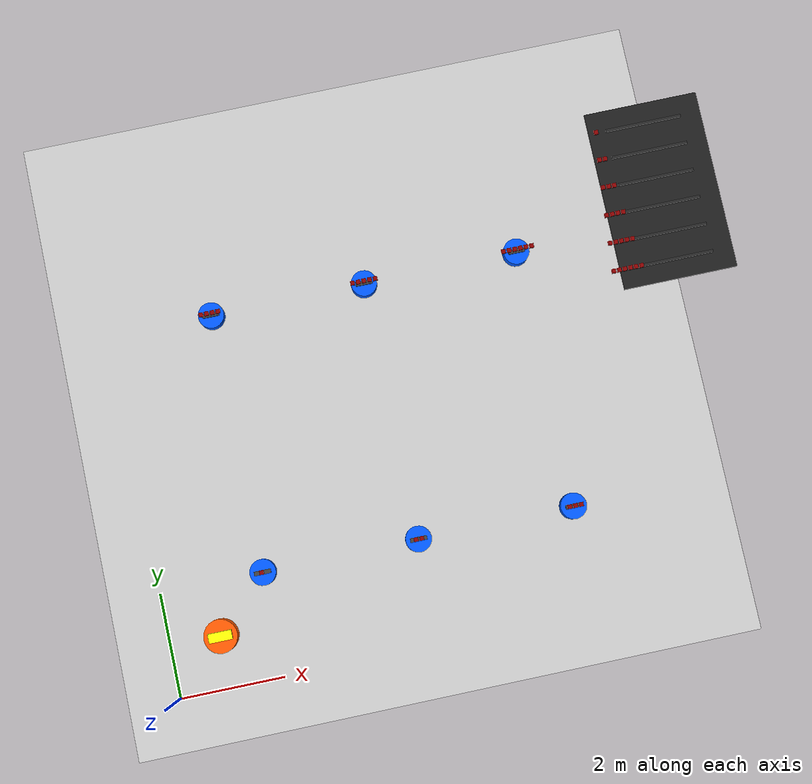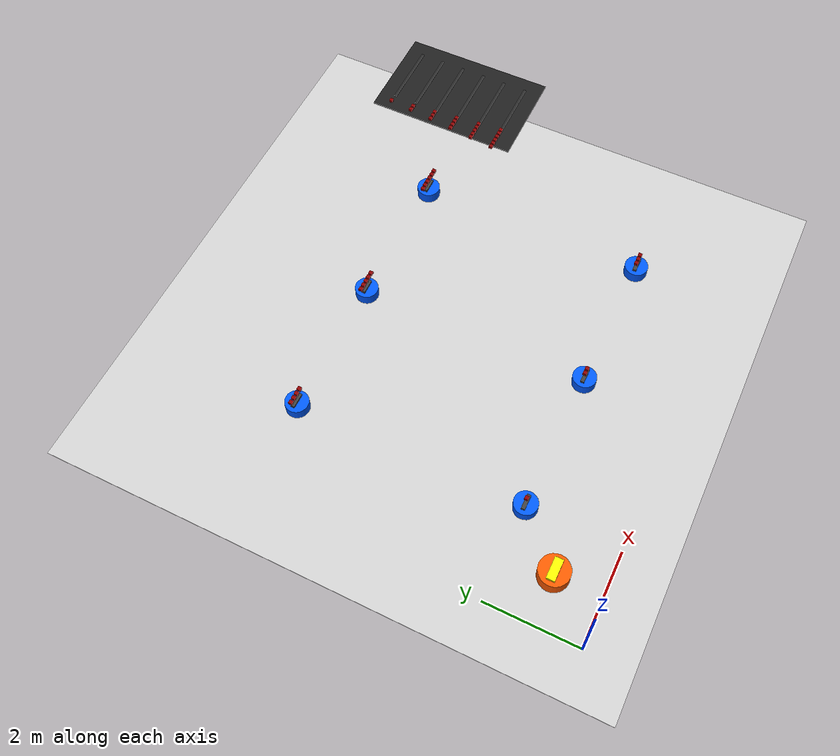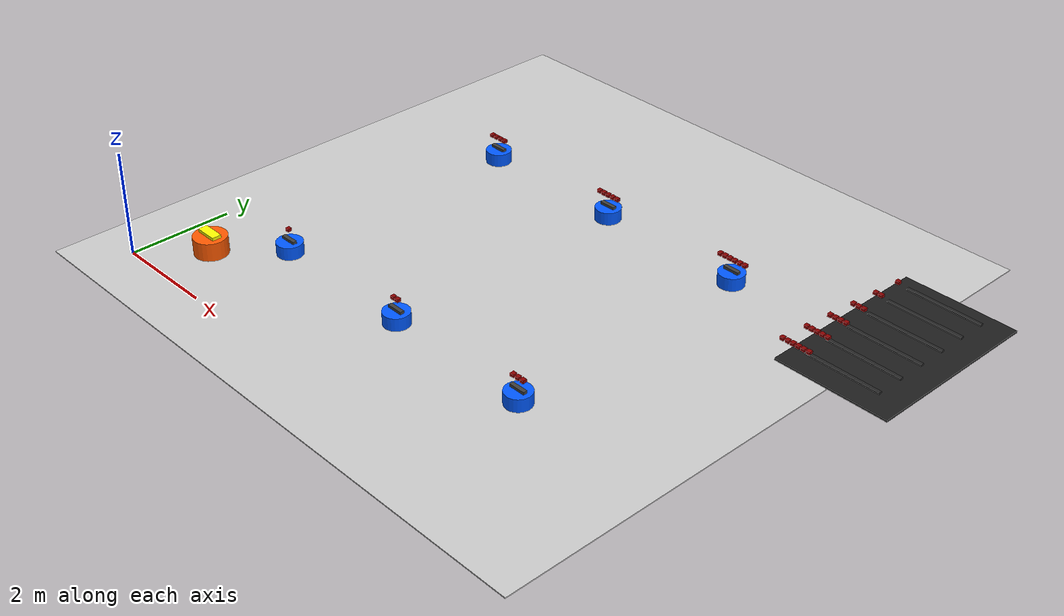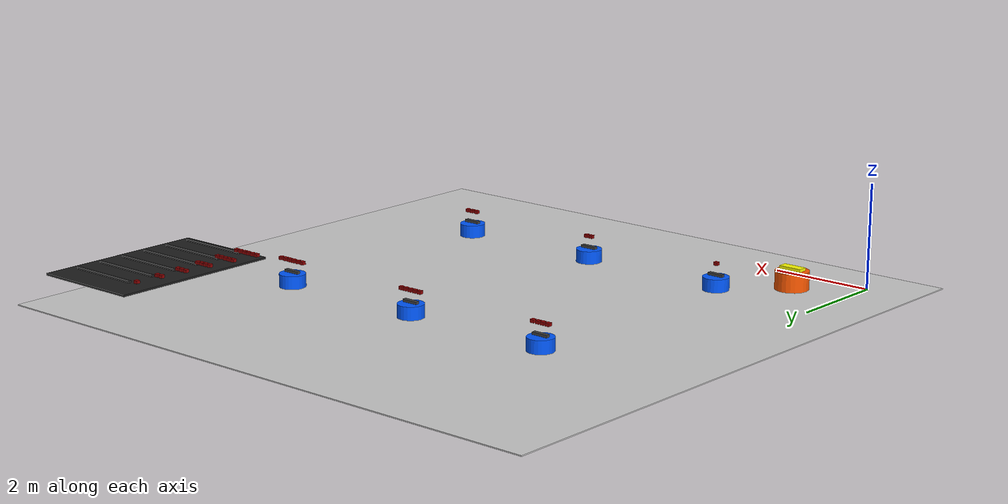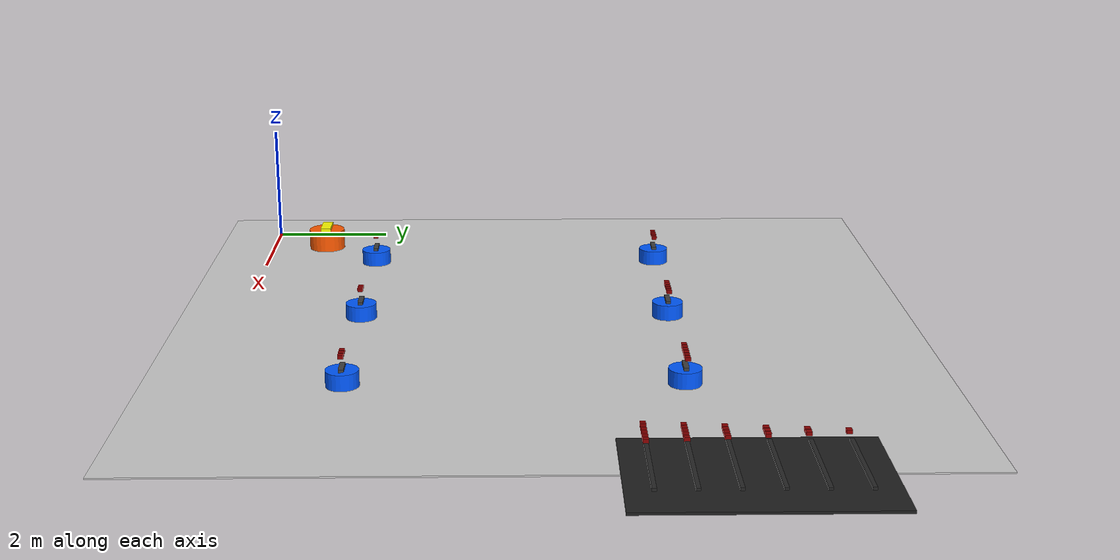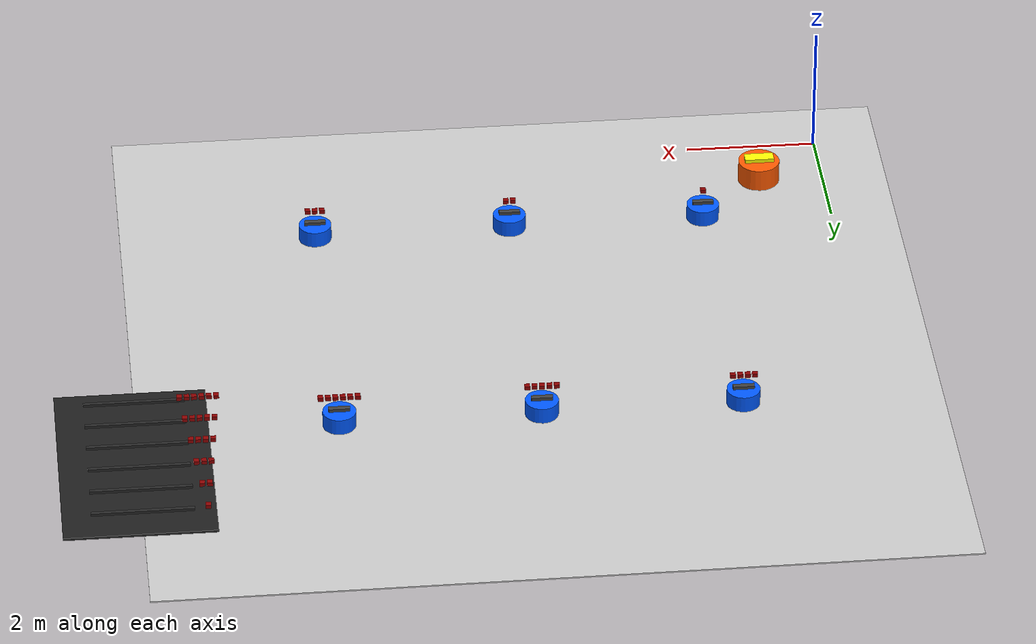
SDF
<sdf version="1.6">
 <world name="charging_world">
  <model name="ground_plane">
   <static>true</static>
   <link name="ground_link">
    <collision name="ground_collision"><geometry><box><size>12 12 0.02</size></box></geometry></collision>
    <visual name="ground_visual">
     <pose>5 5 -0.01 0 0 0</pose>
     <geometry><box><size>12 12 0.02</size></box></geometry>
     <material><ambient>0.8 0.8 0.8 1</ambient><diffuse>0.8 0.8 0.8 1</diffuse></material>
    </visual>
   </link>
  </model>
  <model name="battery_panel_back">
   <pose>11.05 7.65 0.02 0 0 0</pose>
   <static>true</static>
   <link name="link">
    <visual name="panel">
     <geometry><box><size>2.25 3.55 0.04</size></box></geometry>
     <material><ambient>0.12 0.12 0.12 1</ambient><diffuse>0.12 0.12 0.12 1</diffuse></material>
    </visual>
   </link>
  </model>
  <model name="panel_label_r1">
   <pose>10.05 9.00 0.18 0 0 0</pose>
   <static>true</static>
   <link name="link">
    <visual name="dot1">
     <geometry><box><size>0.08 0.08 0.06</size></box></geometry>
     <material><ambient>0.55 0 0 1</ambient><diffuse>0.55 0 0 1</diffuse></material>
    </visual>
   </link>
  </model>
  <model name="panel_label_r2">
   <pose>10.05 8.45 0.18 0 0 0</pose>
   <static>true</static>
   <link name="link">
    <visual name="dot1">
     <pose>-0.055 0.000 0.000 0 0 0</pose>
     <geometry><box><size>0.08 0.08 0.06</size></box></geometry>
     <material><ambient>0.55 0 0 1</ambient><diffuse>0.55 0 0 1</diffuse></material>
    </visual>
    <visual name="dot2">
     <pose>0.055 0.000 0.000 0 0 0</pose>
     <geometry><box><size>0.08 0.08 0.06</size></box></geometry>
     <material><ambient>0.55 0 0 1</ambient><diffuse>0.55 0 0 1</diffuse></material>
    </visual>
   </link>
  </model>
  <model name="panel_label_r3">
   <pose>10.05 7.90 0.18 0 0 0</pose>
   <static>true</static>
   <link name="link">
    <visual name="dot1">
     <pose>-0.110 0.000 0.000 0 0 0</pose>
     <geometry><box><size>0.08 0.08 0.06</size></box></geometry>
     <material><ambient>0.55 0 0 1</ambient><diffuse>0.55 0 0 1</diffuse></material>
    </visual>
    <visual name="dot2">
     <geometry><box><size>0.08 0.08 0.06</size></box></geometry>
     <material><ambient>0.55 0 0 1</ambient><diffuse>0.55 0 0 1</diffuse></material>
    </visual>
    <visual name="dot3">
     <pose>0.110 0.000 0.000 0 0 0</pose>
     <geometry><box><size>0.08 0.08 0.06</size></box></geometry>
     <material><ambient>0.55 0 0 1</ambient><diffuse>0.55 0 0 1</diffuse></material>
    </visual>
   </link>
  </model>
  <model name="panel_label_r4">
   <pose>10.05 7.35 0.18 0 0 0</pose>
   <static>true</static>
   <link name="link">
    <visual name="dot1">
     <pose>-0.165 0.000 0.000 0 0 0</pose>
     <geometry><box><size>0.08 0.08 0.06</size></box></geometry>
     <material><ambient>0.55 0 0 1</ambient><diffuse>0.55 0 0 1</diffuse></material>
    </visual>
    <visual name="dot2">
     <pose>-0.055 0.000 0.000 0 0 0</pose>
     <geometry><box><size>0.08 0.08 0.06</size></box></geometry>
     <material><ambient>0.55 0 0 1</ambient><diffuse>0.55 0 0 1</diffuse></material>
    </visual>
    <visual name="dot3">
     <pose>0.055 0.000 0.000 0 0 0</pose>
     <geometry><box><size>0.08 0.08 0.06</size></box></geometry>
     <material><ambient>0.55 0 0 1</ambient><diffuse>0.55 0 0 1</diffuse></material>
    </visual>
    <visual name="dot4">
     <pose>0.165 0.000 0.000 0 0 0</pose>
     <geometry><box><size>0.08 0.08 0.06</size></box></geometry>
     <material><ambient>0.55 0 0 1</ambient><diffuse>0.55 0 0 1</diffuse></material>
    </visual>
   </link>
  </model>
  <model name="panel_label_r5">
   <pose>10.05 6.80 0.18 0 0 0</pose>
   <static>true</static>
   <link name="link">
    <visual name="dot1">
     <pose>-0.220 0.000 0.000 0 0 0</pose>
     <geometry><box><size>0.08 0.08 0.06</size></box></geometry>
     <material><ambient>0.55 0 0 1</ambient><diffuse>0.55 0 0 1</diffuse></material>
    </visual>
    <visual name="dot2">
     <pose>-0.110 0.000 0.000 0 0 0</pose>
     <geometry><box><size>0.08 0.08 0.06</size></box></geometry>
     <material><ambient>0.55 0 0 1</ambient><diffuse>0.55 0 0 1</diffuse></material>
    </visual>
    <visual name="dot3">
     <geometry><box><size>0.08 0.08 0.06</size></box></geometry>
     <material><ambient>0.55 0 0 1</ambient><diffuse>0.55 0 0 1</diffuse></material>
    </visual>
    <visual name="dot4">
     <pose>0.110 0.000 0.000 0 0 0</pose>
     <geometry><box><size>0.08 0.08 0.06</size></box></geometry>
     <material><ambient>0.55 0 0 1</ambient><diffuse>0.55 0 0 1</diffuse></material>
    </visual>
    <visual name="dot5">
     <pose>0.220 0.000 0.000 0 0 0</pose>
     <geometry><box><size>0.08 0.08 0.06</size></box></geometry>
     <material><ambient>0.55 0 0 1</ambient><diffuse>0.55 0 0 1</diffuse></material>
    </visual>
   </link>
  </model>
  <model name="panel_label_r6">
   <pose>10.05 6.25 0.18 0 0 0</pose>
   <static>true</static>
   <link name="link">
    <visual name="dot1">
     <pose>-0.275 0.000 0.000 0 0 0</pose>
     <geometry><box><size>0.08 0.08 0.06</size></box></geometry>
     <material><ambient>0.55 0 0 1</ambient><diffuse>0.55 0 0 1</diffuse></material>
    </visual>
    <visual name="dot2">
     <pose>-0.165 0.000 0.000 0 0 0</pose>
     <geometry><box><size>0.08 0.08 0.06</size></box></geometry>
     <material><ambient>0.55 0 0 1</ambient><diffuse>0.55 0 0 1</diffuse></material>
    </visual>
    <visual name="dot3">
     <pose>-0.055 0.000 0.000 0 0 0</pose>
     <geometry><box><size>0.08 0.08 0.06</size></box></geometry>
     <material><ambient>0.55 0 0 1</ambient><diffuse>0.55 0 0 1</diffuse></material>
    </visual>
    <visual name="dot4">
     <pose>0.055 0.000 0.000 0 0 0</pose>
     <geometry><box><size>0.08 0.08 0.06</size></box></geometry>
     <material><ambient>0.55 0 0 1</ambient><diffuse>0.55 0 0 1</diffuse></material>
    </visual>
    <visual name="dot5">
     <pose>0.165 0.000 0.000 0 0 0</pose>
     <geometry><box><size>0.08 0.08 0.06</size></box></geometry>
     <material><ambient>0.55 0 0 1</ambient><diffuse>0.55 0 0 1</diffuse></material>
    </visual>
    <visual name="dot6">
     <pose>0.275 0.000 0.000 0 0 0</pose>
     <geometry><box><size>0.08 0.08 0.06</size></box></geometry>
     <material><ambient>0.55 0 0 1</ambient><diffuse>0.55 0 0 1</diffuse></material>
    </visual>
   </link>
  </model>
  <model name="battery_track_r1">
   <pose>11.00 9.00 0.14 0 0 0</pose>
   <static>true</static>
   <link name="link">
    <visual name="track">
     <geometry><box><size>1.50 0.06 0.04</size></box></geometry>
     <material><ambient>0.15 0.15 0.15 1</ambient><diffuse>0.15 0.15 0.15 1</diffuse></material>
    </visual>
   </link>
  </model>
  <model name="battery_track_r2">
   <pose>11.00 8.45 0.14 0 0 0</pose>
   <static>true</static>
   <link name="link">
    <visual name="track">
     <geometry><box><size>1.50 0.06 0.04</size></box></geometry>
     <material><ambient>0.15 0.15 0.15 1</ambient><diffuse>0.15 0.15 0.15 1</diffuse></material>
    </visual>
   </link>
  </model>
  <model name="battery_track_r3">
   <pose>11.00 7.90 0.14 0 0 0</pose>
   <static>true</static>
   <link name="link">
    <visual name="track">
     <geometry><box><size>1.50 0.06 0.04</size></box></geometry>
     <material><ambient>0.15 0.15 0.15 1</ambient><diffuse>0.15 0.15 0.15 1</diffuse></material>
    </visual>
   </link>
  </model>
  <model name="battery_track_r4">
   <pose>11.00 7.35 0.14 0 0 0</pose>
   <static>true</static>
   <link name="link">
    <visual name="track">
     <geometry><box><size>1.50 0.06 0.04</size></box></geometry>
     <material><ambient>0.15 0.15 0.15 1</ambient><diffuse>0.15 0.15 0.15 1</diffuse></material>
    </visual>
   </link>
  </model>
  <model name="battery_track_r5">
   <pose>11.00 6.80 0.14 0 0 0</pose>
   <static>true</static>
   <link name="link">
    <visual name="track">
     <geometry><box><size>1.50 0.06 0.04</size></box></geometry>
     <material><ambient>0.15 0.15 0.15 1</ambient><diffuse>0.15 0.15 0.15 1</diffuse></material>
    </visual>
   </link>
  </model>
  <model name="battery_track_r6">
   <pose>11.00 6.25 0.14 0 0 0</pose>
   <static>true</static>
   <link name="link">
    <visual name="track">
     <geometry><box><size>1.50 0.06 0.04</size></box></geometry>
     <material><ambient>0.15 0.15 0.15 1</ambient><diffuse>0.15 0.15 0.15 1</diffuse></material>
    </visual>
   </link>
  </model>
  <model name="charging_robot">
   <pose>1.0 1.0 0 0 0 0</pose>
   <static>false</static>
   <link name="base_link">
    <gravity>false</gravity>
    <inertial><mass>1.0</mass><inertia><ixx>0.1</ixx><iyy>0.1</iyy><izz>0.1</izz></inertia></inertial>
    <visual name="body">
     <pose>0 0 0.22 0 0 0</pose>
     <geometry><cylinder><radius>0.32</radius><length>0.35</length></cylinder></geometry>
     <material><ambient>1.0 0.25 0.0 1</ambient><diffuse>1.0 0.35 0.0 1</diffuse></material>
    </visual>
    <visual name="charging_pad">
     <pose>0 0 0.44 0 0 0</pose>
     <geometry><box><size>0.45 0.18 0.06</size></box></geometry>
     <material><ambient>1.0 1.0 0.0 1</ambient><diffuse>1.0 1.0 0.0 1</diffuse></material>
    </visual>
   </link>
  </model>
  <model name="working_robot_1">
   <pose>2.0 2.0 0 0 0 0</pose>
   <static>false</static>
   <link name="base_link">
    <gravity>false</gravity>
    <inertial><mass>1.0</mass><inertia><ixx>0.1</ixx><iyy>0.1</iyy><izz>0.1</izz></inertia></inertial>
    <visual name="body">
     <pose>0 0 0.18 0 0 0</pose>
     <geometry><cylinder><radius>0.25</radius><length>0.25</length></cylinder></geometry>
     <material><ambient>0.0 0.25 0.9 1</ambient><diffuse>0.0 0.35 1.0 1</diffuse></material>
    </visual>
    <visual name="battery_indicator">
     <pose>0 0 0.34 0 0 0</pose>
     <geometry><box><size>0.32 0.08 0.05</size></box></geometry>
     <material><ambient>0.25 0.25 0.25 1</ambient><diffuse>0.25 0.25 0.25 1</diffuse></material>
    </visual>
    <visual name="id_dot_1">
     <pose>0.000 0 0.55 0 0 0</pose>
     <geometry><box><size>0.08 0.08 0.06</size></box></geometry>
     <material><ambient>0.55 0 0 1</ambient><diffuse>0.55 0 0 1</diffuse></material>
    </visual>
   </link>
  </model>
  <model name="working_robot_2">
   <pose>5.0 2.0 0 0 0 0</pose>
   <static>false</static>
   <link name="base_link">
    <gravity>false</gravity>
    <inertial><mass>1.0</mass><inertia><ixx>0.1</ixx><iyy>0.1</iyy><izz>0.1</izz></inertia></inertial>
    <visual name="body">
     <pose>0 0 0.18 0 0 0</pose>
     <geometry><cylinder><radius>0.25</radius><length>0.25</length></cylinder></geometry>
     <material><ambient>0.0 0.25 0.9 1</ambient><diffuse>0.0 0.35 1.0 1</diffuse></material>
    </visual>
    <visual name="battery_indicator">
     <pose>0 0 0.34 0 0 0</pose>
     <geometry><box><size>0.32 0.08 0.05</size></box></geometry>
     <material><ambient>0.25 0.25 0.25 1</ambient><diffuse>0.25 0.25 0.25 1</diffuse></material>
    </visual>
    <visual name="id_dot_1">
     <pose>-0.055 0 0.55 0 0 0</pose>
     <geometry><box><size>0.08 0.08 0.06</size></box></geometry>
     <material><ambient>0.55 0 0 1</ambient><diffuse>0.55 0 0 1</diffuse></material>
    </visual>
    <visual name="id_dot_2">
     <pose>0.055 0 0.55 0 0 0</pose>
     <geometry><box><size>0.08 0.08 0.06</size></box></geometry>
     <material><ambient>0.55 0 0 1</ambient><diffuse>0.55 0 0 1</diffuse></material>
    </visual>
   </link>
  </model>
  <model name="working_robot_3">
   <pose>8.0 2.0 0 0 0 0</pose>
   <static>false</static>
   <link name="base_link">
    <gravity>false</gravity>
    <inertial><mass>1.0</mass><inertia><ixx>0.1</ixx><iyy>0.1</iyy><izz>0.1</izz></inertia></inertial>
    <visual name="body">
     <pose>0 0 0.18 0 0 0</pose>
     <geometry><cylinder><radius>0.25</radius><length>0.25</length></cylinder></geometry>
     <material><ambient>0.0 0.25 0.9 1</ambient><diffuse>0.0 0.35 1.0 1</diffuse></material>
    </visual>
    <visual name="battery_indicator">
     <pose>0 0 0.34 0 0 0</pose>
     <geometry><box><size>0.32 0.08 0.05</size></box></geometry>
     <material><ambient>0.25 0.25 0.25 1</ambient><diffuse>0.25 0.25 0.25 1</diffuse></material>
    </visual>
    <visual name="id_dot_1">
     <pose>-0.110 0 0.55 0 0 0</pose>
     <geometry><box><size>0.08 0.08 0.06</size></box></geometry>
     <material><ambient>0.55 0 0 1</ambient><diffuse>0.55 0 0 1</diffuse></material>
    </visual>
    <visual name="id_dot_2">
     <pose>0.000 0 0.55 0 0 0</pose>
     <geometry><box><size>0.08 0.08 0.06</size></box></geometry>
     <material><ambient>0.55 0 0 1</ambient><diffuse>0.55 0 0 1</diffuse></material>
    </visual>
    <visual name="id_dot_3">
     <pose>0.110 0 0.55 0 0 0</pose>
     <geometry><box><size>0.08 0.08 0.06</size></box></geometry>
     <material><ambient>0.55 0 0 1</ambient><diffuse>0.55 0 0 1</diffuse></material>
    </visual>
   </link>
  </model>
  <model name="working_robot_4">
   <pose>2.0 7.0 0 0 0 0</pose>
   <static>false</static>
   <link name="base_link">
    <gravity>false</gravity>
    <inertial><mass>1.0</mass><inertia><ixx>0.1</ixx><iyy>0.1</iyy><izz>0.1</izz></inertia></inertial>
    <visual name="body">
     <pose>0 0 0.18 0 0 0</pose>
     <geometry><cylinder><radius>0.25</radius><length>0.25</length></cylinder></geometry>
     <material><ambient>0.0 0.25 0.9 1</ambient><diffuse>0.0 0.35 1.0 1</diffuse></material>
    </visual>
    <visual name="battery_indicator">
     <pose>0 0 0.34 0 0 0</pose>
     <geometry><box><size>0.32 0.08 0.05</size></box></geometry>
     <material><ambient>0.25 0.25 0.25 1</ambient><diffuse>0.25 0.25 0.25 1</diffuse></material>
    </visual>
    <visual name="id_dot_1">
     <pose>-0.165 0 0.55 0 0 0</pose>
     <geometry><box><size>0.08 0.08 0.06</size></box></geometry>
     <material><ambient>0.55 0 0 1</ambient><diffuse>0.55 0 0 1</diffuse></material>
    </visual>
    <visual name="id_dot_2">
     <pose>-0.055 0 0.55 0 0 0</pose>
     <geometry><box><size>0.08 0.08 0.06</size></box></geometry>
     <material><ambient>0.55 0 0 1</ambient><diffuse>0.55 0 0 1</diffuse></material>
    </visual>
    <visual name="id_dot_3">
     <pose>0.055 0 0.55 0 0 0</pose>
     <geometry><box><size>0.08 0.08 0.06</size></box></geometry>
     <material><ambient>0.55 0 0 1</ambient><diffuse>0.55 0 0 1</diffuse></material>
    </visual>
    <visual name="id_dot_4">
     <pose>0.165 0 0.55 0 0 0</pose>
     <geometry><box><size>0.08 0.08 0.06</size></box></geometry>
     <material><ambient>0.55 0 0 1</ambient><diffuse>0.55 0 0 1</diffuse></material>
    </visual>
   </link>
  </model>
  <model name="working_robot_5">
   <pose>5.0 7.0 0 0 0 0</pose>
   <static>false</static>
   <link name="base_link">
    <gravity>false</gravity>
    <inertial><mass>1.0</mass><inertia><ixx>0.1</ixx><iyy>0.1</iyy><izz>0.1</izz></inertia></inertial>
    <visual name="body">
     <pose>0 0 0.18 0 0 0</pose>
     <geometry><cylinder><radius>0.25</radius><length>0.25</length></cylinder></geometry>
     <material><ambient>0.0 0.25 0.9 1</ambient><diffuse>0.0 0.35 1.0 1</diffuse></material>
    </visual>
    <visual name="battery_indicator">
     <pose>0 0 0.34 0 0 0</pose>
     <geometry><box><size>0.32 0.08 0.05</size></box></geometry>
     <material><ambient>0.25 0.25 0.25 1</ambient><diffuse>0.25 0.25 0.25 1</diffuse></material>
    </visual>
    <visual name="id_dot_1">
     <pose>-0.220 0 0.55 0 0 0</pose>
     <geometry><box><size>0.08 0.08 0.06</size></box></geometry>
     <material><ambient>0.55 0 0 1</ambient><diffuse>0.55 0 0 1</diffuse></material>
    </visual>
    <visual name="id_dot_2">
     <pose>-0.110 0 0.55 0 0 0</pose>
     <geometry><box><size>0.08 0.08 0.06</size></box></geometry>
     <material><ambient>0.55 0 0 1</ambient><diffuse>0.55 0 0 1</diffuse></material>
    </visual>
    <visual name="id_dot_3">
     <pose>0.000 0 0.55 0 0 0</pose>
     <geometry><box><size>0.08 0.08 0.06</size></box></geometry>
     <material><ambient>0.55 0 0 1</ambient><diffuse>0.55 0 0 1</diffuse></material>
    </visual>
    <visual name="id_dot_4">
     <pose>0.110 0 0.55 0 0 0</pose>
     <geometry><box><size>0.08 0.08 0.06</size></box></geometry>
     <material><ambient>0.55 0 0 1</ambient><diffuse>0.55 0 0 1</diffuse></material>
    </visual>
    <visual name="id_dot_5">
     <pose>0.220 0 0.55 0 0 0</pose>
     <geometry><box><size>0.08 0.08 0.06</size></box></geometry>
     <material><ambient>0.55 0 0 1</ambient><diffuse>0.55 0 0 1</diffuse></material>
    </visual>
   </link>
  </model>
  <model name="working_robot_6">
   <pose>8.0 7.0 0 0 0 0</pose>
   <static>false</static>
   <link name="base_link">
    <gravity>false</gravity>
    <inertial><mass>1.0</mass><inertia><ixx>0.1</ixx><iyy>0.1</iyy><izz>0.1</izz></inertia></inertial>
    <visual name="body">
     <pose>0 0 0.18 0 0 0</pose>
     <geometry><cylinder><radius>0.25</radius><length>0.25</length></cylinder></geometry>
     <material><ambient>0.0 0.25 0.9 1</ambient><diffuse>0.0 0.35 1.0 1</diffuse></material>
    </visual>
    <visual name="battery_indicator">
     <pose>0 0 0.34 0 0 0</pose>
     <geometry><box><size>0.32 0.08 0.05</size></box></geometry>
     <material><ambient>0.25 0.25 0.25 1</ambient><diffuse>0.25 0.25 0.25 1</diffuse></material>
    </visual>
    <visual name="id_dot_1">
     <pose>-0.275 0 0.55 0 0 0</pose>
     <geometry><box><size>0.08 0.08 0.06</size></box></geometry>
     <material><ambient>0.55 0 0 1</ambient><diffuse>0.55 0 0 1</diffuse></material>
    </visual>
    <visual name="id_dot_2">
     <pose>-0.165 0 0.55 0 0 0</pose>
     <geometry><box><size>0.08 0.08 0.06</size></box></geometry>
     <material><ambient>0.55 0 0 1</ambient><diffuse>0.55 0 0 1</diffuse></material>
    </visual>
    <visual name="id_dot_3">
     <pose>-0.055 0 0.55 0 0 0</pose>
     <geometry><box><size>0.08 0.08 0.06</size></box></geometry>
     <material><ambient>0.55 0 0 1</ambient><diffuse>0.55 0 0 1</diffuse></material>
    </visual>
    <visual name="id_dot_4">
     <pose>0.055 0 0.55 0 0 0</pose>
     <geometry><box><size>0.08 0.08 0.06</size></box></geometry>
     <material><ambient>0.55 0 0 1</ambient><diffuse>0.55 0 0 1</diffuse></material>
    </visual>
    <visual name="id_dot_5">
     <pose>0.165 0 0.55 0 0 0</pose>
     <geometry><box><size>0.08 0.08 0.06</size></box></geometry>
     <material><ambient>0.55 0 0 1</ambient><diffuse>0.55 0 0 1</diffuse></material>
    </visual>
    <visual name="id_dot_6">
     <pose>0.275 0 0.55 0 0 0</pose>
     <geometry><box><size>0.08 0.08 0.06</size></box></geometry>
     <material><ambient>0.55 0 0 1</ambient><diffuse>0.55 0 0 1</diffuse></material>
    </visual>
   </link>
  </model>
 </world>
</sdf>
